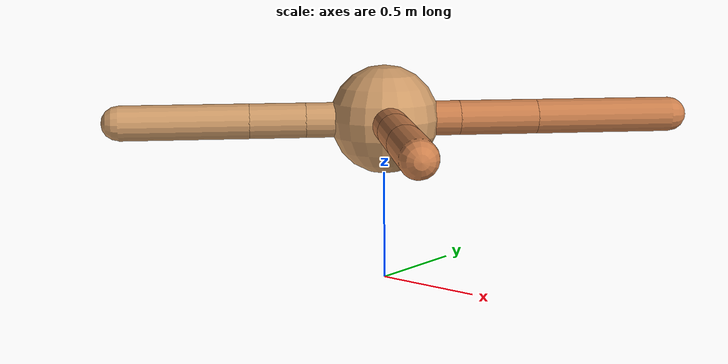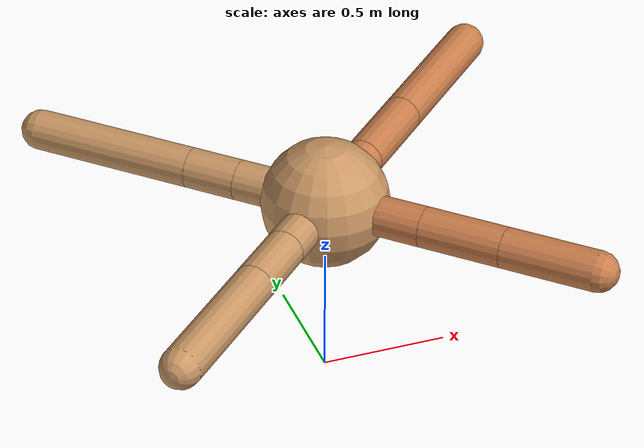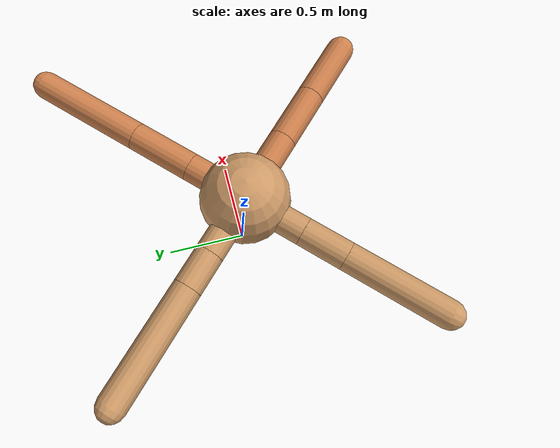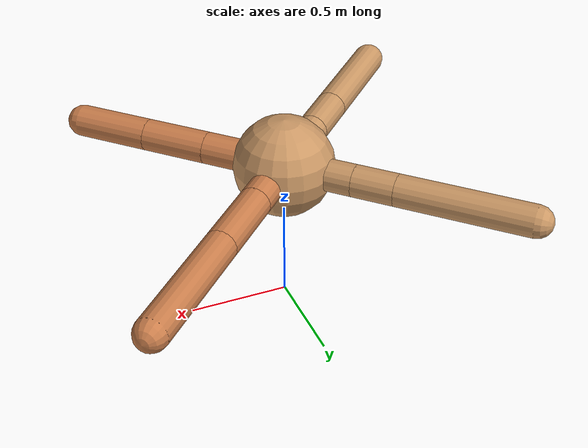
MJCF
<mujoco model="ant">
  <compiler angle="degree" coordinate="local" inertiafromgeom="true" />
  <option integrator="RK4" timestep="0.01" />
  <custom>
    <numeric data="0.0 0.0 0.55 1.0 0.0 0.0 0.0 0.0 1.0 0.0 -1.0 0.0 -1.0 0.0 1.0" name="init_qpos" />
  </custom>
  <default>
    <joint armature="1" damping="1" limited="true" />
    <geom conaffinity="0" condim="3" density="5.0" friction="1.5 0.1 0.1" margin="0.01" rgba="0.8 0.6 0.4 1" />
  </default>
  <worldbody>
    <body name="torso" pos="0 0 0.75">
      <geom name="torso_geom" pos="0 0 0" size="0.25" type="sphere" />

      <body name="front_left_leg" pos="0 0 0">
        <geom fromto="0.0 0.0 0.0 0.24612369490518235 0.24612369490518235 0.0" name="aux_1_geom" size="0.08" type="capsule" rgba=".8 .5 .3 1" />
        <body name="aux_1" pos="0.24612369490518235 0.24612369490518235 0.0">
          <joint axis="0 0 1" name="hip_1" pos="0.0 0.0 0.0" range="-40 40" type="hinge" />
          <geom fromto="0.0 0.0 0.0 0.25696514887378913 0.25696514887378913 0.0" name="left_leg_geom" size="0.08" type="capsule" rgba=".8 .5 .3 1" />
          <body pos="0.25696514887378913 0.25696514887378913 0.0" name="front_left_foot">
            <joint axis="-1 1 0" name="ankle_1" pos="0.0 0.0 0.0" range="30 100" type="hinge" />
            <geom fromto="0.0 0.0 0.0 0.45391205808372065 0.45391205808372065 0.0" name="left_ankle_geom" size="0.08" type="capsule" rgba=".8 .5 .3 1" />
          </body>
        </body>
      </body>
      <body name="front_right_leg" pos="0 0 0">
        <geom fromto="0.0 0.0 0.0 -0.2563726565351056 0.2563726565351056 0.0" name="aux_2_geom" size="0.08" type="capsule" />
        <body name="aux_2" pos="-0.2563726565351056 0.2563726565351056 0.0">
          <joint axis="0 0 1" name="hip_2" pos="0.0 0.0 0.0" range="-40 40" type="hinge" />
          <geom fromto="0.0 0.0 0.0 -0.14888664659465306 0.14888664659465306 0.0" name="right_leg_geom" size="0.08" type="capsule" />
          <body pos="-0.14888664659465306 0.14888664659465306 0.0" name="front_right_foot">
            <joint axis="1 1 0" name="ankle_2" pos="0.0 0.0 0.0" range="-100 -30" type="hinge" />
            <geom fromto="0.0 0.0 0.0 -0.47071829896880407 0.47071829896880407 0.0" name="right_ankle_geom" size="0.08" type="capsule" />
          </body>
        </body>
      </body>
      <body name="left_back_leg" pos="0 0 0">
        <geom fromto="0.0 0.0 0.0 -0.25629227705122254 -0.25629227705122254 0.0" name="aux_3_geom" size="0.08" type="capsule" />
        <body name="aux_3" pos="-0.25629227705122254 -0.25629227705122254 0.0">
          <joint axis="0 0 1" name="hip_3" pos="0.0 0.0 0.0" range="-40 40" type="hinge" />
          <geom fromto="0.0 0.0 0.0 -0.18027749497140383 -0.18027749497140383 0.0" name="back_leg_geom" size="0.08" type="capsule" />
          <body pos="-0.18027749497140383 -0.18027749497140383 0.0" name="left_back_foot">
            <joint axis="-1 1 0" name="ankle_3" pos="0.0 0.0 0.0" range="-100 -30" type="hinge" />
            <geom fromto="0.0 0.0 0.0 -0.41118179826557955 -0.41118179826557955 0.0" name="third_ankle_geom" size="0.08" type="capsule" />
          </body>
        </body>
      </body>
      <body name="right_back_leg" pos="0 0 0">
        <geom fromto="0.0 0.0 0.0 0.29086285618976565 -0.29086285618976565 0.0" name="aux_4_geom" size="0.08" type="capsule" rgba=".8 .5 .3 1" />
        <body name="aux_4" pos="0.29086285618976565 -0.29086285618976565 0.0">
          <joint axis="0 0 1" name="hip_4" pos="0.0 0.0 0.0" range="-40 40" type="hinge" />
          <geom fromto="0.0 0.0 0.0 0.23190335721496158 -0.23190335721496158 0.0" name="rightback_leg_geom" size="0.08" type="capsule" rgba=".8 .5 .3 1" />
          <body pos="0.23190335721496158 -0.23190335721496158 0.0" name="right_back_foot">
            <joint axis="1 1 0" name="ankle_4" pos="0.0 0.0 0.0" range="30 100" type="hinge" />
            <geom fromto="0.0 0.0 0.0 0.2634392750977828 -0.2634392750977828 0.0" name="fourth_ankle_geom" size="0.08" type="capsule" rgba=".8 .5 .3 1" />
          </body>
        </body>
      </body>
    </body>
  </worldbody>
  <actuator>
    <motor ctrllimited="true" ctrlrange="-1.0 1.0" joint="hip_4" gear="150" />
    <motor ctrllimited="true" ctrlrange="-1.0 1.0" joint="ankle_4" gear="150" />
    <motor ctrllimited="true" ctrlrange="-1.0 1.0" joint="hip_1" gear="150" />
    <motor ctrllimited="true" ctrlrange="-1.0 1.0" joint="ankle_1" gear="150" />
    <motor ctrllimited="true" ctrlrange="-1.0 1.0" joint="hip_2" gear="150" />
    <motor ctrllimited="true" ctrlrange="-1.0 1.0" joint="ankle_2" gear="150" />
    <motor ctrllimited="true" ctrlrange="-1.0 1.0" joint="hip_3" gear="150" />
    <motor ctrllimited="true" ctrlrange="-1.0 1.0" joint="ankle_3" gear="150" />
  </actuator>
</mujoco>
